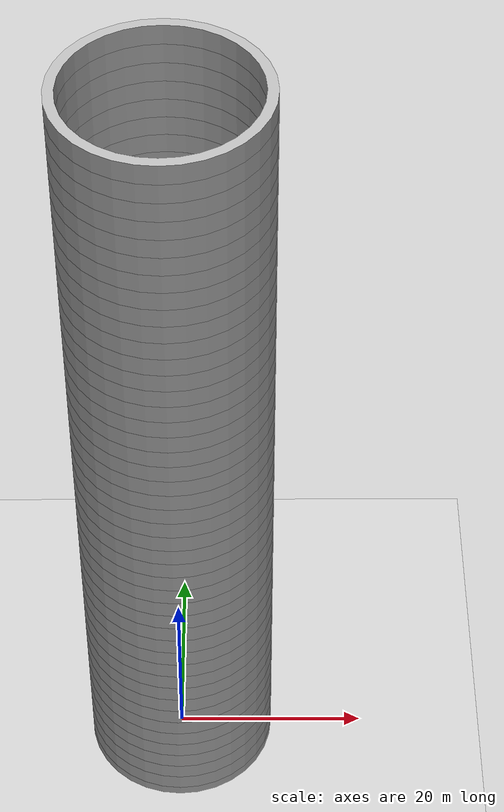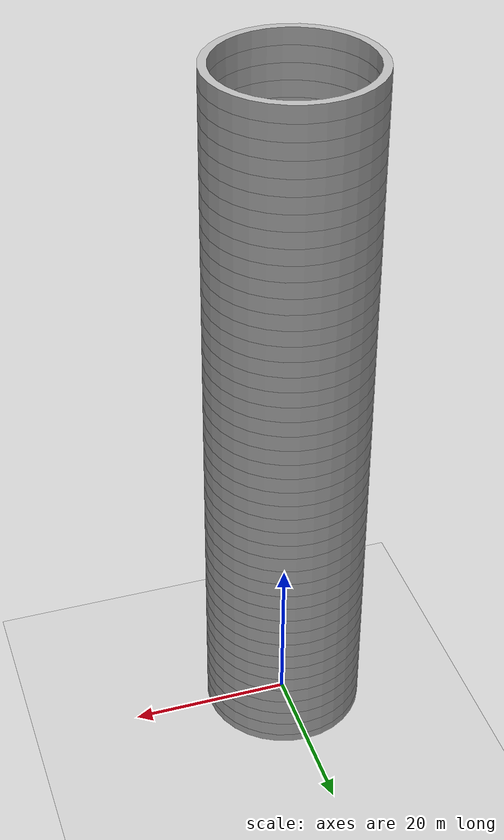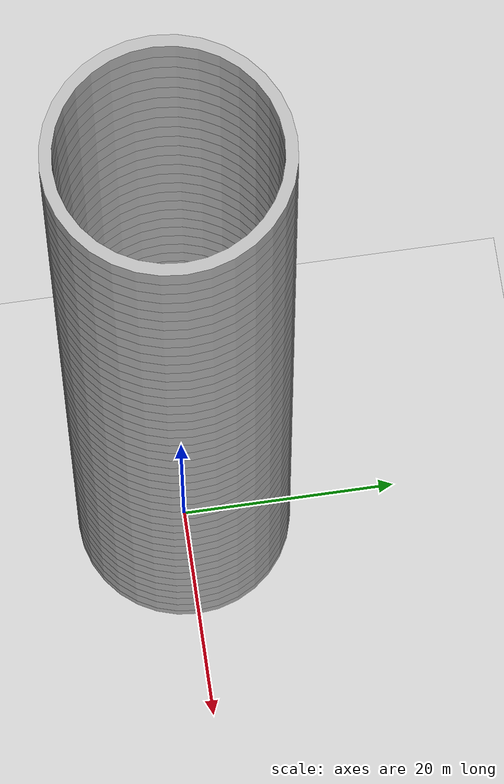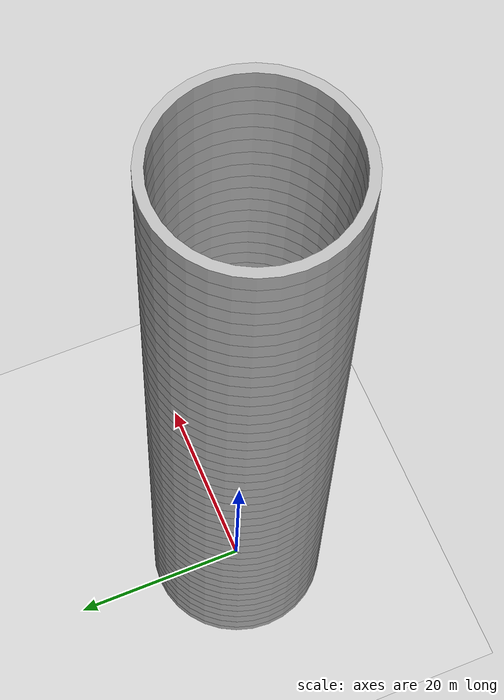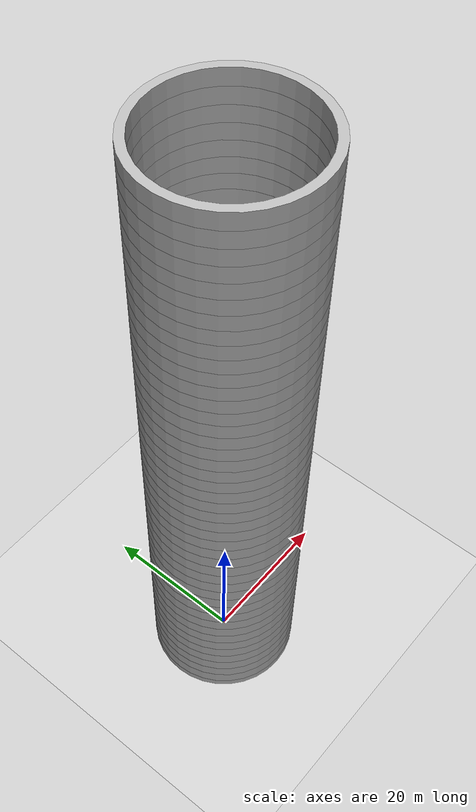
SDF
<?xml version="1.0" ?>
<sdf version="1.4">
  <world name="default">
    <include>
      <uri>model://ground_plane</uri>
    </include>
    <include>
      <uri>model://sun</uri>
    </include>

    <include>
      <name>pipe_segment_1</name>
      <uri>model://pipe_segment_H2</uri>
      <pose>0 0 0   0 0 0</pose>
    </include>
    <include>
      <name>pipe_segment_2</name>
      <uri>model://pipe_segment_H2</uri>
      <pose>0 0 2   0 0 0</pose>
    </include>
    <include>
      <name>pipe_segment_3</name>
      <uri>model://pipe_segment_H2</uri>
      <pose>0 0 4   0 0 0</pose>
    </include>
    <include>
      <name>pipe_segment_4</name>
      <uri>model://pipe_segment_H2</uri>
      <pose>0 0 6   0 0 0</pose>
    </include>
    <include>
      <name>pipe_segment_5</name>
      <uri>model://pipe_segment_H2</uri>
      <pose>0 0 8   0 0 0</pose>
    </include>
    <include>
      <name>pipe_segment_6</name>
      <uri>model://pipe_segment_H2</uri>
      <pose>0 0 10   0 0 0</pose>
    </include>
    <include>
      <name>pipe_segment_7</name>
      <uri>model://pipe_segment_H2</uri>
      <pose>0 0 12   0 0 0</pose>
    </include>
    <include>
      <name>pipe_segment_8</name>
      <uri>model://pipe_segment_H2</uri>
      <pose>0 0 14   0 0 0</pose>
    </include>
    <include>
      <name>pipe_segment_9</name>
      <uri>model://pipe_segment_H2</uri>
      <pose>0 0 16   0 0 0</pose>
    </include>
    <include>
      <name>pipe_segment_10</name>
      <uri>model://pipe_segment_H2</uri>
      <pose>0 0 18   0 0 0</pose>
    </include>
    <include>
      <name>pipe_segment_11</name>
      <uri>model://pipe_segment_H2</uri>
      <pose>0 0 20   0 0 0</pose>
    </include>
    <include>
      <name>pipe_segment_12</name>
      <uri>model://pipe_segment_H2</uri>
      <pose>0 0 22   0 0 0</pose>
    </include>
    <include>
      <name>pipe_segment_13</name>
      <uri>model://pipe_segment_H2</uri>
      <pose>0 0 24   0 0 0</pose>
    </include>
    <include>
      <name>pipe_segment_14</name>
      <uri>model://pipe_segment_H2</uri>
      <pose>0 0 26   0 0 0</pose>
    </include>
    <include>
      <name>pipe_segment_15</name>
      <uri>model://pipe_segment_H2</uri>
      <pose>0 0 28   0 0 0</pose>
    </include>
    <include>
      <name>pipe_segment_16</name>
      <uri>model://pipe_segment_H2</uri>
      <pose>0 0 30   0 0 0</pose>
    </include>
    <include>
      <name>pipe_segment_17</name>
      <uri>model://pipe_segment_H2</uri>
      <pose>0 0 32   0 0 0</pose>
    </include>
    <include>
      <name>pipe_segment_18</name>
      <uri>model://pipe_segment_H2</uri>
      <pose>0 0 34   0 0 0</pose>
    </include>
    <include>
      <name>pipe_segment_19</name>
      <uri>model://pipe_segment_H2</uri>
      <pose>0 0 36   0 0 0</pose>
    </include>
    <include>
      <name>pipe_segment_20</name>
      <uri>model://pipe_segment_H2</uri>
      <pose>0 0 38   0 0 0</pose>
    </include>
    <include>
      <name>pipe_segment_21</name>
      <uri>model://pipe_segment_H2</uri>
      <pose>0 0 40   0 0 0</pose>
    </include>
    <include>
      <name>pipe_segment_22</name>
      <uri>model://pipe_segment_H2</uri>
      <pose>0 0 42   0 0 0</pose>
    </include>
    <include>
      <name>pipe_segment_23</name>
      <uri>model://pipe_segment_H2</uri>
      <pose>0 0 44   0 0 0</pose>
    </include>
    <include>
      <name>pipe_segment_24</name>
      <uri>model://pipe_segment_H2</uri>
      <pose>0 0 46   0 0 0</pose>
    </include>
    <include>
      <name>pipe_segment_25</name>
      <uri>model://pipe_segment_H2</uri>
      <pose>0 0 48   0 0 0</pose>
    </include>
    <include>
      <name>pipe_segment_26</name>
      <uri>model://pipe_segment_H2</uri>
      <pose>0 0 50   0 0 0</pose>
    </include>
    <include>
      <name>pipe_segment_27</name>
      <uri>model://pipe_segment_H2</uri>
      <pose>0 0 52   0 0 0</pose>
    </include>
    <include>
      <name>pipe_segment_28</name>
      <uri>model://pipe_segment_H2</uri>
      <pose>0 0 54   0 0 0</pose>
    </include>
    <include>
      <name>pipe_segment_29</name>
      <uri>model://pipe_segment_H2</uri>
      <pose>0 0 56   0 0 0</pose>
    </include>
    <include>
      <name>pipe_segment_30</name>
      <uri>model://pipe_segment_H2</uri>
      <pose>0 0 58   0 0 0</pose>
    </include>
    <include>
      <name>pipe_segment_31</name>
      <uri>model://pipe_segment_H2</uri>
      <pose>0 0 60   0 0 0</pose>
    </include>
    <include>
      <name>pipe_segment_32</name>
      <uri>model://pipe_segment_H2</uri>
      <pose>0 0 62   0 0 0</pose>
    </include>
    <include>
      <name>pipe_segment_33</name>
      <uri>model://pipe_segment_H2</uri>
      <pose>0 0 64   0 0 0</pose>
    </include>
    <include>
      <name>pipe_segment_34</name>
      <uri>model://pipe_segment_H2</uri>
      <pose>0 0 66   0 0 0</pose>
    </include>
    <include>
      <name>pipe_segment_35</name>
      <uri>model://pipe_segment_H2</uri>
      <pose>0 0 68   0 0 0</pose>
    </include>
    <include>
      <name>pipe_segment_36</name>
      <uri>model://pipe_segment_H2</uri>
      <pose>0 0 70   0 0 0</pose>
    </include>
    <include>
      <name>pipe_segment_37</name>
      <uri>model://pipe_segment_H2</uri>
      <pose>0 0 72   0 0 0</pose>
    </include>
    <include>
      <name>pipe_segment_38</name>
      <uri>model://pipe_segment_H2</uri>
      <pose>0 0 74   0 0 0</pose>
    </include>
    <include>
      <name>pipe_segment_39</name>
      <uri>model://pipe_segment_H2</uri>
      <pose>0 0 76   0 0 0</pose>
    </include>
    <include>
      <name>pipe_segment_40</name>
      <uri>model://pipe_segment_H2</uri>
      <pose>0 0 78   0 0 0</pose>
    </include>
    <include>
      <name>pipe_segment_41</name>
      <uri>model://pipe_segment_H2</uri>
      <pose>0 0 80   0 0 0</pose>
    </include>
    <include>
      <name>pipe_segment_42</name>
      <uri>model://pipe_segment_H2</uri>
      <pose>0 0 82   0 0 0</pose>
    </include>
    <include>
      <name>pipe_segment_43</name>
      <uri>model://pipe_segment_H2</uri>
      <pose>0 0 84   0 0 0</pose>
    </include>
    <include>
      <name>pipe_segment_44</name>
      <uri>model://pipe_segment_H2</uri>
      <pose>0 0 86   0 0 0</pose>
    </include>
    <include>
      <name>pipe_segment_45</name>
      <uri>model://pipe_segment_H2</uri>
      <pose>0 0 88   0 0 0</pose>
    </include>

    <!-- Only one ROS interface plugin is required per world, as any other plugin can connect a Gazebo
         topic to a ROS topic (or vise versa). -->
    <plugin name="ros_interface_plugin" filename="librotors_gazebo_ros_interface_plugin.so"/>

    <spherical_coordinates>
      <surface_model>EARTH_WGS84</surface_model>
      <latitude_deg>47.3667</latitude_deg>
      <longitude_deg>8.5500</longitude_deg>
      <elevation>500.0</elevation>
      <heading_deg>0</heading_deg>
    </spherical_coordinates>
    <physics type='ode'>
      <ode>
        <solver>
          <type>quick</type>
          <iters>1000</iters>
          <sor>1.3</sor>
        </solver>
        <constraints>
          <cfm>0</cfm>
          <erp>0.2</erp>
          <contact_max_correcting_vel>100</contact_max_correcting_vel>
          <contact_surface_layer>0.001</contact_surface_layer>
        </constraints>
      </ode>
      <max_step_size>0.01</max_step_size>
      <real_time_factor>1</real_time_factor>
      <real_time_update_rate>100</real_time_update_rate>
      <gravity>0 0 -9.8</gravity>
    </physics>
  </world>
</sdf>

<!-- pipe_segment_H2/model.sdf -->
<sdf version="1.5">
  <model name="pipe_segment_H2">
    <static>true</static>
    <link name="link">
      <collision name="collision">
        <geometry>
          <mesh>
            <uri>model://pipe_segment_H2/meshes/pipe_segment_H2.dae</uri>
            <scale>1 1 1</scale>
          </mesh>
        </geometry>
      </collision>
      <visual name="visual">
        <geometry>
          <mesh>
            <uri>model://pipe_segment_H2/meshes/pipe_segment_H2.dae</uri>
            <scale>1 1 1</scale>
          </mesh>
        </geometry>
      </visual>
    </link>
  </model>
</sdf>
